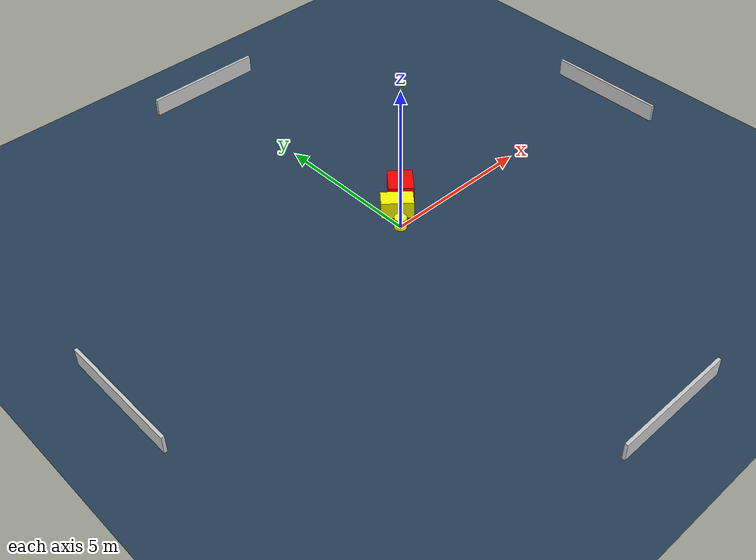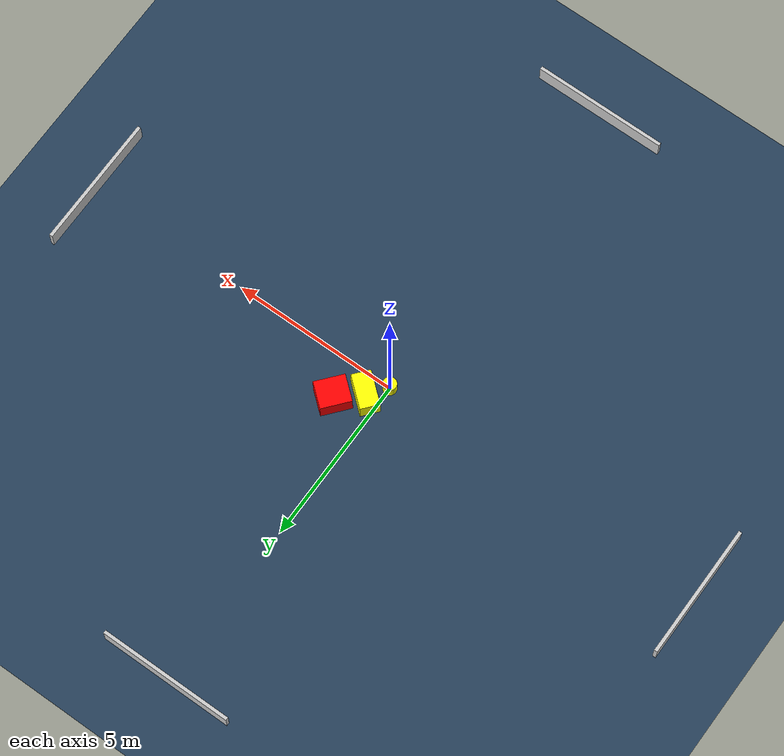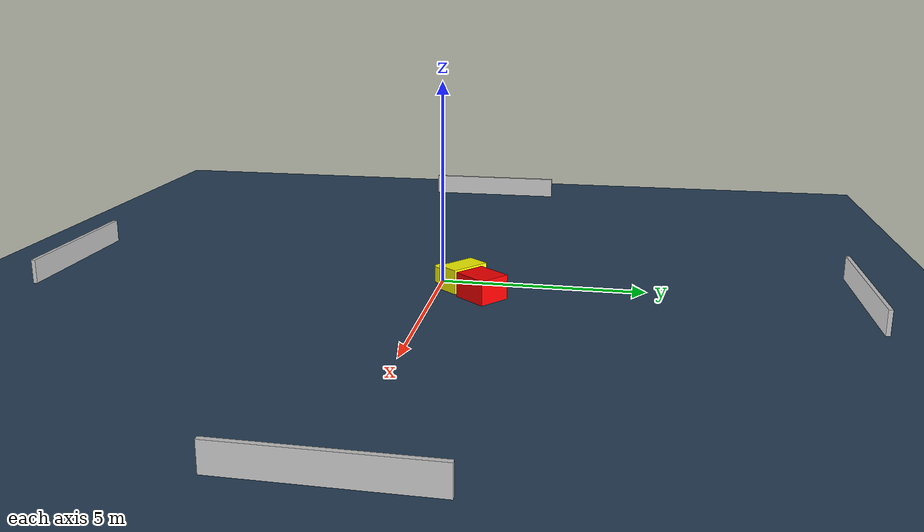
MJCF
<?xml version="1.0" ?>
<mujoco model="generated_environment">
  <option timestep="0.01" integrator="RK4" cone="elliptic"/>
  <default>
    <geom density="1"/>
  </default>
  <asset>
    <texture builtin="gradient" height="3072" name="skybox" rgb1="0.3 0.5 0.7" rgb2="0 0 0" type="skybox" width="512"/>
    <texture builtin="checker" height="300" name="groundplane" rgb1="0.2 0.3 0.4" rgb2="0.1 0.2 0.3" type="2d" width="300"/>
    <material name="groundplane" reflectance="0.2" texrepeat="5 5" texture="groundplane"/>
  </asset>
  <worldbody>
    <light dir="0 0 -1" directional="true" pos="0 0 1.5"/>
    <geom condim="3" friction="0.5 0.005 0.001" material="groundplane" name="floor" pos="0 0 0" size="0 0 0.05" type="plane"/>
    <body name="walls">
      <geom name="wall_1" condim="4" pos="-10.0 0.0 0.3" rgba="0.800000011920929 0.800000011920929 0.800000011920929 1.0" size="0.05 2.0 0.3" type="box"/>
      <geom name="wall_2" condim="4" pos="10.0 0.0 0.3" rgba="0.800000011920929 0.800000011920929 0.800000011920929 1.0" size="0.05 2.0 0.3" type="box"/>
      <geom name="wall_3" condim="4" pos="0.0 -10.0 0.3" rgba="0.800000011920929 0.800000011920929 0.800000011920929 1.0" size="2.0 0.05 0.3" type="box"/>
      <geom name="wall_4" condim="4" pos="0.0 10.0 0.3" rgba="0.800000011920929 0.800000011920929 0.800000011920929 1.0" size="2.0 0.05 0.3" type="box"/>
    </body>
    <body name="robot">
      <joint name="joint_x" type="slide" pos="0 0 0" axis="1 0 0"/>
      <joint name="joint_y" type="slide" pos="0 0 0" axis="0 1 0"/>
      <geom name="robot" type="cylinder" pos="0.0 0.0 0.2" size="0.2 0.2 0.0" mass="5.0" friction="1.0 0.005 0.0001" condim="4" rgba="1.0 1.0 0.0 1.0"/>
    </body>
    <body name="obstacle_1_movable">
      <geom name="obstacle_1_movable" condim="4" pos="0.39775581805364396 0.5717286973941915 0.3" euler="0 0 319.9375503301192" friction="0.0 0.005 0.001" rgba="1.0 1.0 0.0 1.0" size="0.5116404323727426 0.2853981843142016 0.3" type="box" mass="0.1"/>
      <joint type="free"/>
    </body>
    <body name="obstacle_2_static">
      <geom name="obstacle_2_static" condim="4" pos="1.082382057318991 1.132088411945951 0.3" euler="0 0 50.06010269138477" friction="0.0 0.005 0.001" rgba="1.0 0.0 0.0 1.0" size="0.4528819385403746 0.40166522582245345 0.3" type="box"/>
    </body>
  </worldbody>
  <actuator>
    <motor name="actuator_x" joint="joint_x" gear="1" ctrlrange="-1 1"/>
    <motor name="actuator_y" joint="joint_y" gear="1" ctrlrange="-1 1"/>
  </actuator>
</mujoco>
